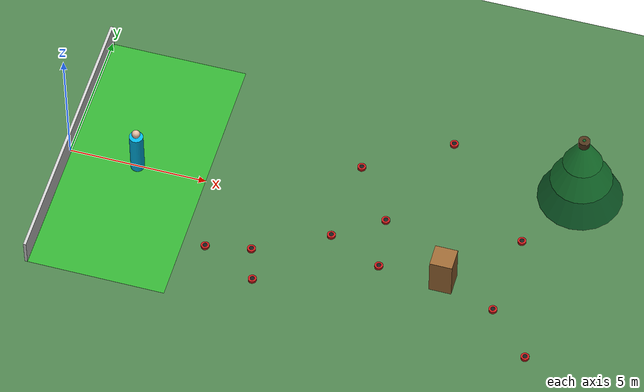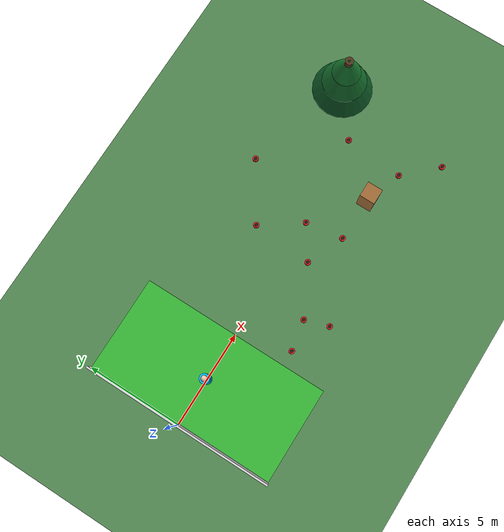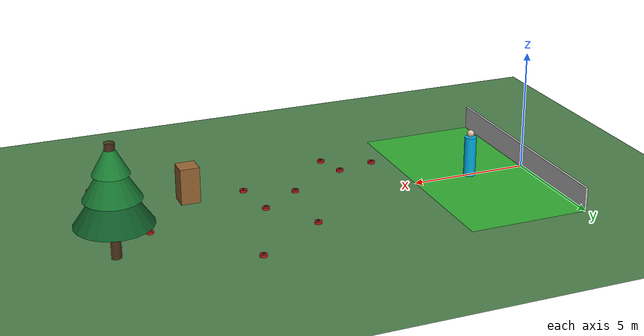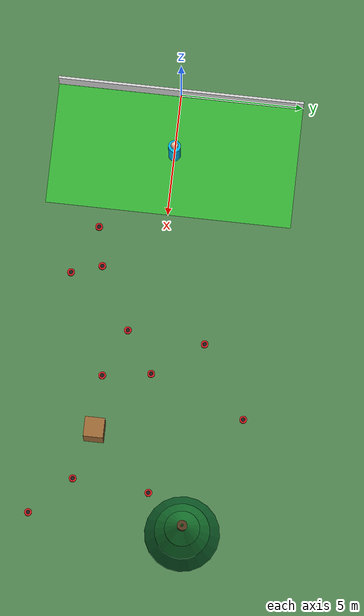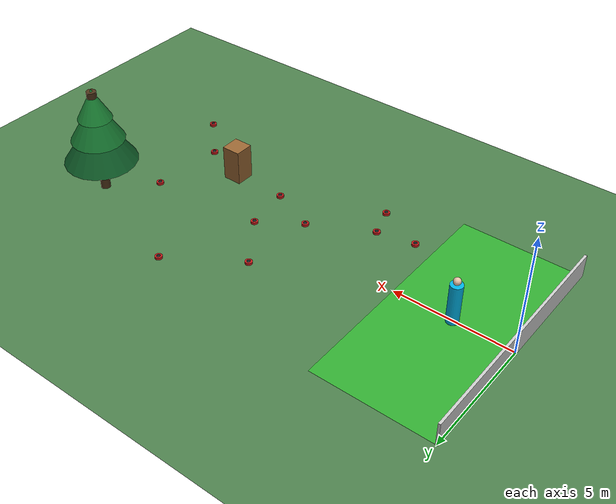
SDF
<sdf version="1.9">
 <world name="stage1_seeded">
  <model name="ground_plane">
   <static>true</static>
   <link name="link">
    <collision name="collision">
     <geometry><plane><normal>0 0 1</normal><size>100 100</size></plane></geometry>
    </collision>
    <visual name="visual">
     <geometry><plane><normal>0 0 1</normal><size>100 100</size></plane></geometry>
     <material><ambient>0.3 0.4 0.3 1.0</ambient><diffuse>0.3 0.5 0.3 1.0</diffuse></material>
    </visual>
   </link>
  </model>
  <model name="wall_west">
   <static>true</static>
   <pose>0.0 0.0 0.5 0 0 0</pose>
   <link name="link">
    <visual name="visual">
     <geometry><box><size>0.1 10.0 1.0</size></box></geometry>
     <material><ambient>0.8 0.8 0.8 1.0</ambient></material>
    </visual>
    <collision name="collision"><geometry><box><size>0.1 10.0 1.0</size></box></geometry></collision>
   </link>
  </model>
  <model name="start_zone_mat">
   <static>true</static>
   <pose>2.5 0.0 0.005 0 0 0</pose>
   <link name="link">
    <visual name="visual">
     <geometry><box><size>5.0 10.0 0.001</size></box></geometry>
     <material><ambient>0.1 0.6 0.1 0.7</ambient><diffuse>0.2 0.8 0.2 0.7</diffuse></material>
    </visual>
   </link>
  </model>
  <include><uri>model://static_human</uri><name>human_0</name><pose>2.5 0.0 0.0 0 0 0.0</pose></include>
  <include><uri>model://static_obstacle</uri><name>obstacle_2</name><pose>14.15 -1.94 0.0 0 0 0</pose></include>
  <model name="mine_1">
   <static>true</static>
   <pose>17.66 -4.23 0.0 0 0 0</pose>
   <link name="link">
    <pose>0 0 0.05 0 0 0</pose>
    <collision name="collision">
     <geometry><cylinder><radius>0.15</radius><length>0.1</length></cylinder></geometry>
    </collision>
    <visual name="visual_base">
     <geometry><cylinder><radius>0.15</radius><length>0.1</length></cylinder></geometry>
     <material><ambient>0.8 0.1 0.1 1</ambient><diffuse>0.8 0.1 0.1 1</diffuse></material>
    </visual>
    <visual name="visual_top">
     <pose>0 0 0.055 0 0 0</pose>
     <geometry><cylinder><radius>0.08</radius><length>0.01</length></cylinder></geometry>
     <material><ambient>0.1 0.1 0.1 1</ambient><diffuse>0.1 0.1 0.1 1</diffuse></material>
    </visual>
   </link>
  </model>
  <model name="mine_2">
   <static>true</static>
   <pose>11.56 0.05 0.0 0 0 0</pose>
   <link name="link">
    <pose>0 0 0.05 0 0 0</pose>
    <collision name="collision">
     <geometry><cylinder><radius>0.15</radius><length>0.1</length></cylinder></geometry>
    </collision>
    <visual name="visual_base">
     <geometry><cylinder><radius>0.15</radius><length>0.1</length></cylinder></geometry>
     <material><ambient>0.8 0.1 0.1 1</ambient><diffuse>0.8 0.1 0.1 1</diffuse></material>
    </visual>
    <visual name="visual_top">
     <pose>0 0 0.055 0 0 0</pose>
     <geometry><cylinder><radius>0.08</radius><length>0.01</length></cylinder></geometry>
     <material><ambient>0.1 0.1 0.1 1</ambient><diffuse>0.1 0.1 0.1 1</diffuse></material>
    </visual>
   </link>
  </model>
  <model name="mine_3">
   <static>true</static>
   <pose>5.8 -2.71 0.0 0 0 0</pose>
   <link name="link">
    <pose>0 0 0.05 0 0 0</pose>
    <collision name="collision">
     <geometry><cylinder><radius>0.15</radius><length>0.1</length></cylinder></geometry>
    </collision>
    <visual name="visual_base">
     <geometry><cylinder><radius>0.15</radius><length>0.1</length></cylinder></geometry>
     <material><ambient>0.8 0.1 0.1 1</ambient><diffuse>0.8 0.1 0.1 1</diffuse></material>
    </visual>
    <visual name="visual_top">
     <pose>0 0 0.055 0 0 0</pose>
     <geometry><cylinder><radius>0.08</radius><length>0.01</length></cylinder></geometry>
     <material><ambient>0.1 0.1 0.1 1</ambient><diffuse>0.1 0.1 0.1 1</diffuse></material>
    </visual>
   </link>
  </model>
  <model name="mine_8">
   <static>true</static>
   <pose>7.78 -3.63 0.0 0 0 0</pose>
   <link name="link">
    <pose>0 0 0.05 0 0 0</pose>
    <collision name="collision">
     <geometry><cylinder><radius>0.15</radius><length>0.1</length></cylinder></geometry>
    </collision>
    <visual name="visual_base">
     <geometry><cylinder><radius>0.15</radius><length>0.1</length></cylinder></geometry>
     <material><ambient>0.8 0.1 0.1 1</ambient><diffuse>0.8 0.1 0.1 1</diffuse></material>
    </visual>
    <visual name="visual_top">
     <pose>0 0 0.055 0 0 0</pose>
     <geometry><cylinder><radius>0.08</radius><length>0.01</length></cylinder></geometry>
     <material><ambient>0.1 0.1 0.1 1</ambient><diffuse>0.1 0.1 0.1 1</diffuse></material>
    </visual>
   </link>
  </model>
  <model name="mine_11">
   <static>true</static>
   <pose>16.36 0.47 0.0 0 0 0</pose>
   <link name="link">
    <pose>0 0 0.05 0 0 0</pose>
    <collision name="collision">
     <geometry><cylinder><radius>0.15</radius><length>0.1</length></cylinder></geometry>
    </collision>
    <visual name="visual_base">
     <geometry><cylinder><radius>0.15</radius><length>0.1</length></cylinder></geometry>
     <material><ambient>0.8 0.1 0.1 1</ambient><diffuse>0.8 0.1 0.1 1</diffuse></material>
    </visual>
    <visual name="visual_top">
     <pose>0 0 0.055 0 0 0</pose>
     <geometry><cylinder><radius>0.08</radius><length>0.01</length></cylinder></geometry>
     <material><ambient>0.1 0.1 0.1 1</ambient><diffuse>0.1 0.1 0.1 1</diffuse></material>
    </visual>
   </link>
  </model>
  <model name="mine_13">
   <static>true</static>
   <pose>11.84 -1.9 0.0 0 0 0</pose>
   <link name="link">
    <pose>0 0 0.05 0 0 0</pose>
    <collision name="collision">
     <geometry><cylinder><radius>0.15</radius><length>0.1</length></cylinder></geometry>
    </collision>
    <visual name="visual_base">
     <geometry><cylinder><radius>0.15</radius><length>0.1</length></cylinder></geometry>
     <material><ambient>0.8 0.1 0.1 1</ambient><diffuse>0.8 0.1 0.1 1</diffuse></material>
    </visual>
    <visual name="visual_top">
     <pose>0 0 0.055 0 0 0</pose>
     <geometry><cylinder><radius>0.08</radius><length>0.01</length></cylinder></geometry>
     <material><ambient>0.1 0.1 0.1 1</ambient><diffuse>0.1 0.1 0.1 1</diffuse></material>
    </visual>
   </link>
  </model>
  <model name="mine_14">
   <static>true</static>
   <pose>7.39 -2.4 0.0 0 0 0</pose>
   <link name="link">
    <pose>0 0 0.05 0 0 0</pose>
    <collision name="collision">
     <geometry><cylinder><radius>0.15</radius><length>0.1</length></cylinder></geometry>
    </collision>
    <visual name="visual_base">
     <geometry><cylinder><radius>0.15</radius><length>0.1</length></cylinder></geometry>
     <material><ambient>0.8 0.1 0.1 1</ambient><diffuse>0.8 0.1 0.1 1</diffuse></material>
    </visual>
    <visual name="visual_top">
     <pose>0 0 0.055 0 0 0</pose>
     <geometry><cylinder><radius>0.08</radius><length>0.01</length></cylinder></geometry>
     <material><ambient>0.1 0.1 0.1 1</ambient><diffuse>0.1 0.1 0.1 1</diffuse></material>
    </visual>
   </link>
  </model>
  <model name="mine_16">
   <static>true</static>
   <pose>16.11 -2.61 0.0 0 0 0</pose>
   <link name="link">
    <pose>0 0 0.05 0 0 0</pose>
    <collision name="collision">
     <geometry><cylinder><radius>0.15</radius><length>0.1</length></cylinder></geometry>
    </collision>
    <visual name="visual_base">
     <geometry><cylinder><radius>0.15</radius><length>0.1</length></cylinder></geometry>
     <material><ambient>0.8 0.1 0.1 1</ambient><diffuse>0.8 0.1 0.1 1</diffuse></material>
    </visual>
    <visual name="visual_top">
     <pose>0 0 0.055 0 0 0</pose>
     <geometry><cylinder><radius>0.08</radius><length>0.01</length></cylinder></geometry>
     <material><ambient>0.1 0.1 0.1 1</ambient><diffuse>0.1 0.1 0.1 1</diffuse></material>
    </visual>
   </link>
  </model>
  <model name="mine_17">
   <static>true</static>
   <pose>13.01 3.93 0.0 0 0 0</pose>
   <link name="link">
    <pose>0 0 0.05 0 0 0</pose>
    <collision name="collision">
     <geometry><cylinder><radius>0.15</radius><length>0.1</length></cylinder></geometry>
    </collision>
    <visual name="visual_base">
     <geometry><cylinder><radius>0.15</radius><length>0.1</length></cylinder></geometry>
     <material><ambient>0.8 0.1 0.1 1</ambient><diffuse>0.8 0.1 0.1 1</diffuse></material>
    </visual>
    <visual name="visual_top">
     <pose>0 0 0.055 0 0 0</pose>
     <geometry><cylinder><radius>0.08</radius><length>0.01</length></cylinder></geometry>
     <material><ambient>0.1 0.1 0.1 1</ambient><diffuse>0.1 0.1 0.1 1</diffuse></material>
    </visual>
   </link>
  </model>
  <model name="mine_18">
   <static>true</static>
   <pose>10.13 2.06 0.0 0 0 0</pose>
   <link name="link">
    <pose>0 0 0.05 0 0 0</pose>
    <collision name="collision">
     <geometry><cylinder><radius>0.15</radius><length>0.1</length></cylinder></geometry>
    </collision>
    <visual name="visual_base">
     <geometry><cylinder><radius>0.15</radius><length>0.1</length></cylinder></geometry>
     <material><ambient>0.8 0.1 0.1 1</ambient><diffuse>0.8 0.1 0.1 1</diffuse></material>
    </visual>
    <visual name="visual_top">
     <pose>0 0 0.055 0 0 0</pose>
     <geometry><cylinder><radius>0.08</radius><length>0.01</length></cylinder></geometry>
     <material><ambient>0.1 0.1 0.1 1</ambient><diffuse>0.1 0.1 0.1 1</diffuse></material>
    </visual>
   </link>
  </model>
  <model name="mine_19">
   <static>true</static>
   <pose>9.9 -1.08 0.0 0 0 0</pose>
   <link name="link">
    <pose>0 0 0.05 0 0 0</pose>
    <collision name="collision">
     <geometry><cylinder><radius>0.15</radius><length>0.1</length></cylinder></geometry>
    </collision>
    <visual name="visual_base">
     <geometry><cylinder><radius>0.15</radius><length>0.1</length></cylinder></geometry>
     <material><ambient>0.8 0.1 0.1 1</ambient><diffuse>0.8 0.1 0.1 1</diffuse></material>
    </visual>
    <visual name="visual_top">
     <pose>0 0 0.055 0 0 0</pose>
     <geometry><cylinder><radius>0.08</radius><length>0.01</length></cylinder></geometry>
     <material><ambient>0.1 0.1 0.1 1</ambient><diffuse>0.1 0.1 0.1 1</diffuse></material>
    </visual>
   </link>
  </model>
  <model name="mountain_pine_tree">
   <static>true</static>
   <pose>18.0 2.0 0.0 0 0 0</pose>
   <link name="pine_link">
    <pose>0 0 2.25 0 0 0</pose>
    <collision name="trunk_collision">
     <geometry><cylinder><radius>0.2</radius><length>4.5</length></cylinder></geometry>
    </collision>
    <visual name="trunk_visual">
     <geometry><cylinder><radius>0.2</radius><length>4.5</length></cylinder></geometry>
     <material><ambient>0.3 0.2 0.1 1.0</ambient><diffuse>0.3 0.2 0.1 1.0</diffuse></material>
    </visual>
    <visual name="pine_tier1">
     <pose>0 0 0.2 0 0 0</pose>
     <geometry><cone><radius>1.5</radius><length>2.2</length></cone></geometry>
     <material><ambient>0.05 0.35 0.15 1.0</ambient><diffuse>0.05 0.35 0.15 1.0</diffuse></material>
    </visual>
    <visual name="pine_tier2">
     <pose>0 0 1.0 0 0 0</pose>
     <geometry><cone><radius>1.1</radius><length>1.8</length></cone></geometry>
     <material><ambient>0.08 0.45 0.18 1.0</ambient><diffuse>0.08 0.45 0.18 1.0</diffuse></material>
    </visual>
    <visual name="pine_tier3">
     <pose>0 0 1.7 0 0 0</pose>
     <geometry><cone><radius>0.7</radius><length>1.3</length></cone></geometry>
     <material><ambient>0.1 0.5 0.2 1.0</ambient><diffuse>0.1 0.5 0.2 1.0</diffuse></material>
    </visual>
   </link>
  </model>
 </world>
</sdf>
